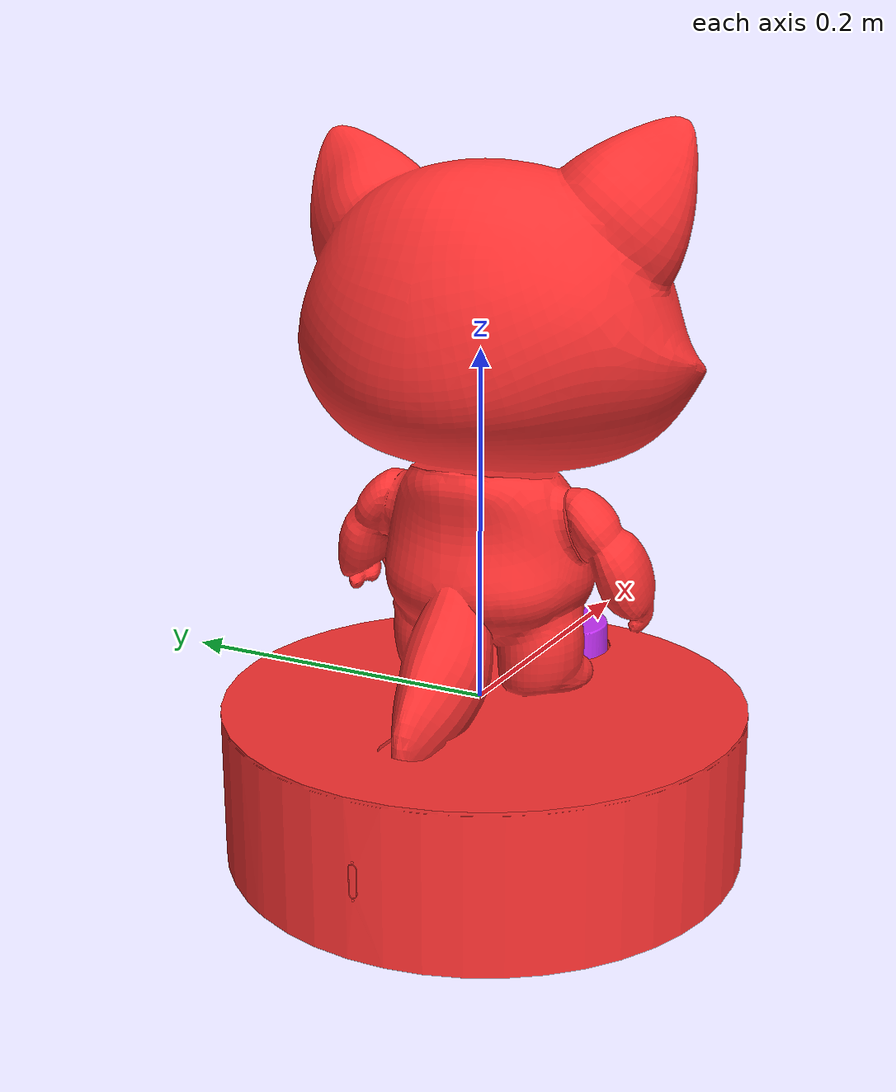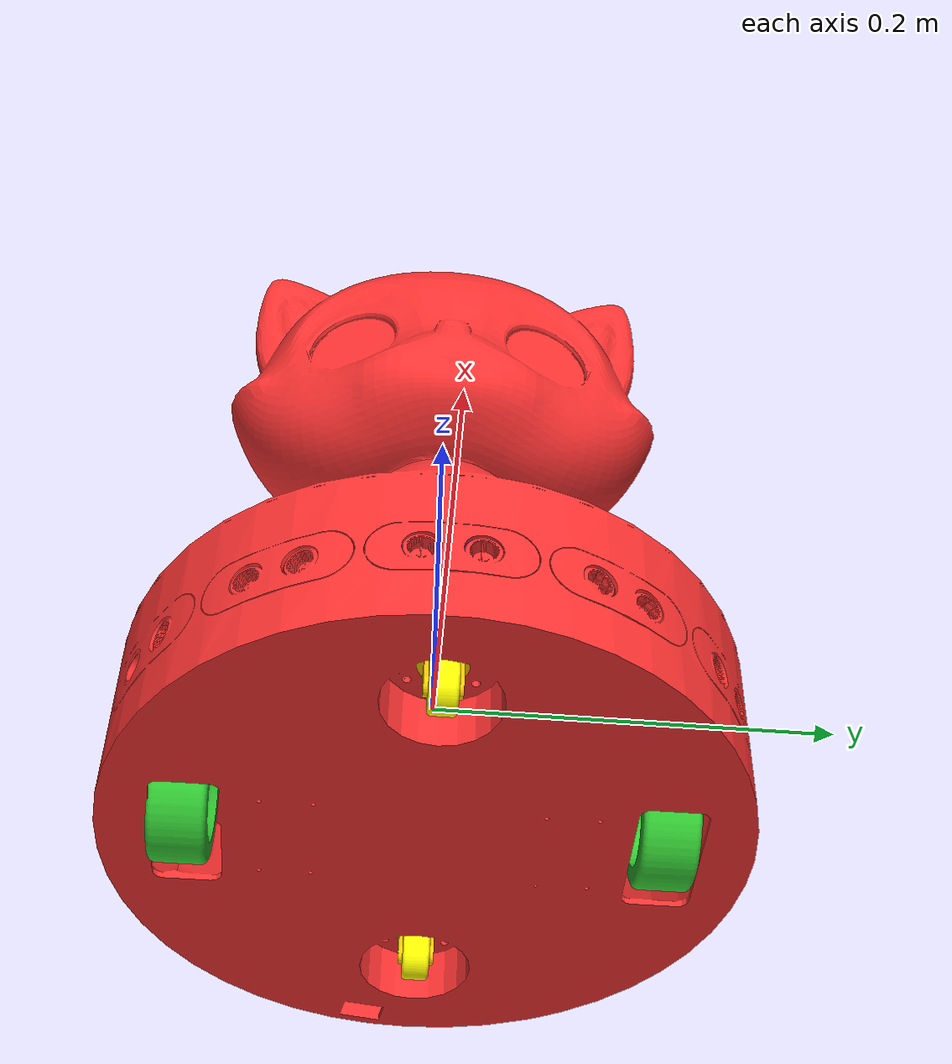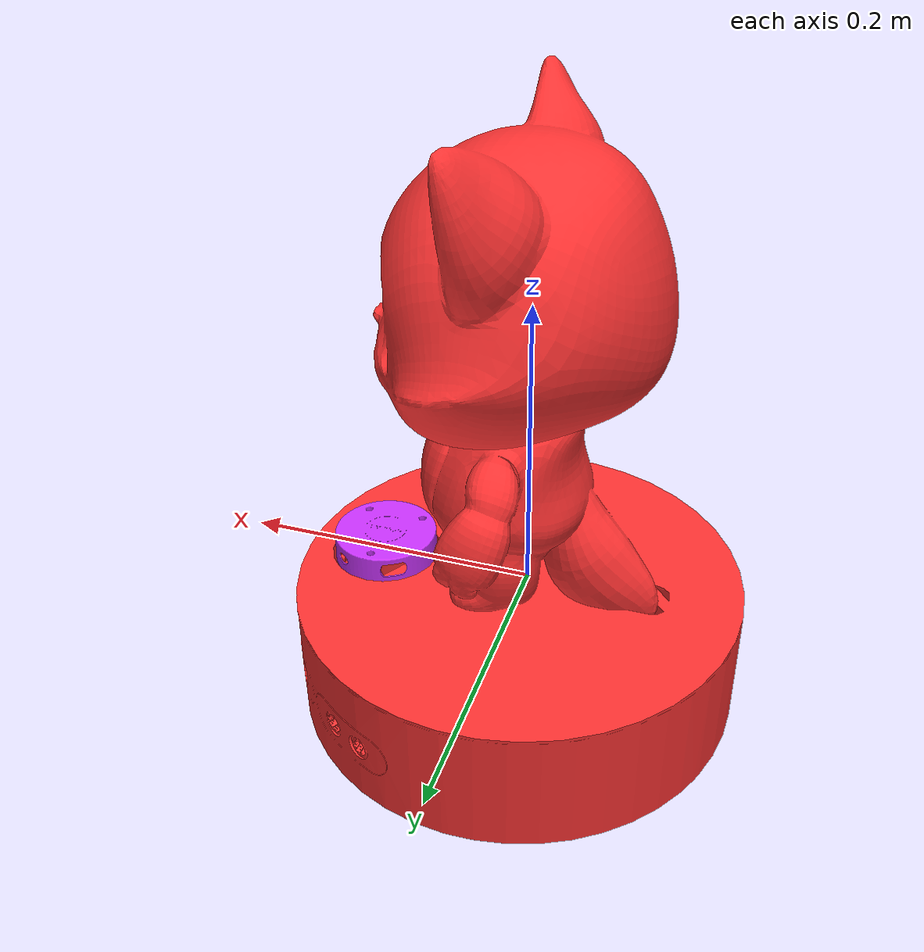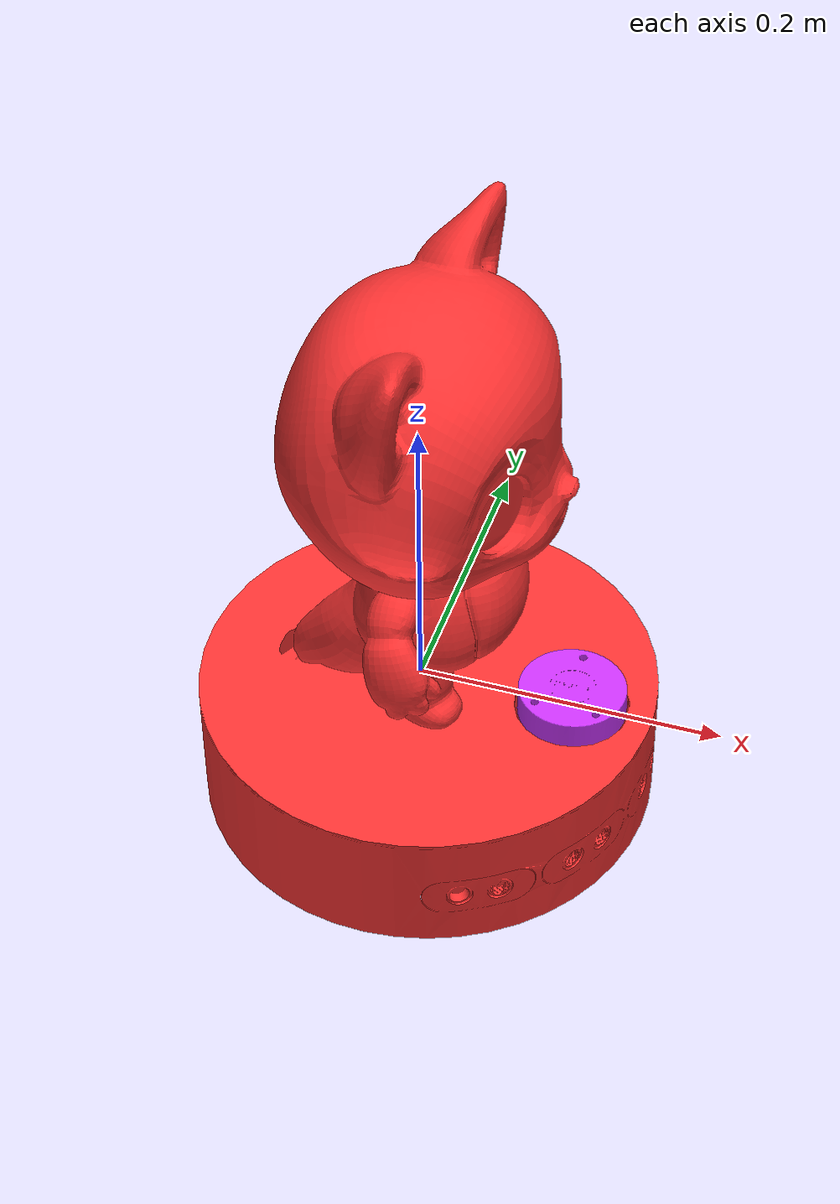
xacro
<?xml version="1.0" encoding="utf-8"?>
<robot
  name="redpanda_base">

  <!-- BASE LINK - Main robot body -->
  <link name="base_link"/>
  <link name="chassis_link">
    <inertial>
      <origin
        xyz="0.0035323 -0.00058335 0.12517"
        rpy="0 0 0" />
      <mass
        value="5" />
      <inertia
        ixx="0.021131"
        ixy="-2.2073E-06"
        ixz="0.00032516"
        iyy="0.017413"
        iyz="1.1682E-06"
        izz="0.023777" />
    </inertial>
    <visual>
      <origin
        xyz="0 0 0"
        rpy="0 0 0" />
      <geometry>
        <mesh
          filename="file://$(find redpanda_base)/meshes/base_link.STL" />
      </geometry>
      <material
        name="chassis_material">
        <color
          rgba="1 0.2 0.2 1" />
      </material>
    </visual>
    <collision>
      <origin
        xyz="0 0 0"
        rpy="0 0 0" />
      <geometry>
        <mesh
          filename="file://$(find redpanda_base)/meshes/base_link.STL" />
      </geometry>
    </collision>
  </link>
  <joint name="chassis_joint" type="fixed">
    <parent link="base_link"/>
    <child link="chassis_link"/>
    <origin xyz="0 0 0" rpy="0 0 0"/>
  </joint>

  <!-- LEFT WHEEL ASSEMBLY -->
  <link
    name="left_link">
    <inertial>
      <origin
        xyz="9.1168E-17 4.5103E-17 -0.0011655"
        rpy="0 0 0" />
      <mass
        value="0.1" />
      <inertia
        ixx="2.107E-05"
        ixy="-2.076E-21"
        ixz="7.6185E-22"
        iyy="2.107E-05"
        iyz="-2.5207E-21"
        izz="3.6474E-05" />
    </inertial>
    <visual>
      <origin
        xyz="0 0 0"
        rpy="0 0 0" />
      <geometry>
        <mesh
          filename="file://$(find redpanda_base)/meshes/left_link.STL" />
      </geometry>
      <material
        name="wheel_material">
        <color
          rgba="0.2 0.8 0.2 1" />
      </material>
    </visual>
    <collision>
      <origin
        xyz="0 0 0"
        rpy="0 0 0" />
      <geometry>
        <mesh
          filename="file://$(find redpanda_base)/meshes/left_link.STL" />
      </geometry>
    </collision>
  </link>
  <joint
    name="left_joint"
    type="continuous">
    <origin
      xyz="0.0053219 0.111 -0.064"
      rpy="-1.5708 0 0" />
    <parent
      link="chassis_link" />
    <child
      link="left_link" />
    <axis
      xyz="0 0 1" />
  </joint>

  <!-- RIGHT WHEEL ASSEMBLY -->
  <link
    name="right_link">
    <inertial>
      <origin
        xyz="-2.5058E-19 3.4694E-18 0.0011655"
        rpy="0 0 0" />
      <mass
        value="0.1" />
      <inertia
        ixx="2.107E-05"
        ixy="4.5801E-23"
        ixz="4.9702E-22"
        iyy="2.107E-05"
        iyz="2.0688E-22"
        izz="3.6474E-05" />
    </inertial>
    <visual>
      <origin
        xyz="0 0 0"
        rpy="0 0 0" />
      <geometry>
        <mesh
          filename="file://$(find redpanda_base)/meshes/right_link.STL" />
      </geometry>
      <material
        name="wheel_material">
        <color
          rgba="0.2 0.8 0.2 1" />
      </material>
    </visual>
    <collision>
      <origin
        xyz="0 0 0"
        rpy="0 0 0" />
      <geometry>
        <mesh
          filename="file://$(find redpanda_base)/meshes/right_link.STL" />
      </geometry>
    </collision>
  </link>
  <joint
    name="right_joint"
    type="continuous">
    <origin
      xyz="0.0053219 -0.111 -0.064"
      rpy="1.5708 0 0" />
    <parent
      link="chassis_link" />
    <child
      link="right_link" />
    <axis
      xyz="0 0 -1" />
  </joint>

  <!-- FRONT CASTER ASSEMBLY -->
  <link
    name="front_link">
    <inertial>
      <origin
        xyz="0.0018285 -2.3064E-17 -0.0067942"
        rpy="0 0 0" />
      <mass
        value="0.1" />
      <inertia
        ixx="1.3996E-07"
        ixy="1.0188E-08"
        ixz="2.9877E-08"
        iyy="1.4735E-07"
        iyz="-3.0127E-08"
        izz="1.1813E-07" />
    </inertial>
    <visual>
      <origin
        xyz="0 0 0"
        rpy="0 0 0" />
      <geometry>
        <mesh
          filename="file://$(find redpanda_base)/meshes/front_link.STL" />
      </geometry>
      <material
        name="caster_material">
        <color
          rgba="1 0.8 0 1" />
      </material>
    </visual>
    <collision>
      <origin
        xyz="0 0 0"
        rpy="0 0 0" />
      <geometry>
        <mesh
          filename="file://$(find redpanda_base)/meshes/front_link.STL" />
      </geometry>
    </collision>
  </link>
  <joint
    name="front_joint"
    type="continuous">
    <origin
      xyz="0.10232 0 -0.0635"
      rpy="0 0 0" />
    <parent
      link="chassis_link" />
    <child
      link="front_link" />
    <axis
      xyz="0 0 -1" />
  </joint>

  <!-- Front Caster Wheel -->
  <link
    name="casterfront_link">
    <inertial>
      <origin
        xyz="-1.3878E-17 4.3368E-19 -3.3126E-19"
        rpy="0 0 0" />
      <mass
        value="0.1" />
      <inertia
        ixx="3.2243E-07"
        ixy="-1.0157E-24"
        ixz="4.6905E-22"
        iyy="3.2243E-07"
        iyz="3.8842E-24"
        izz="4.7927E-07" />
    </inertial>
    <visual>
      <origin
        xyz="0 0 0"
        rpy="0 0 0" />
      <geometry>
        <mesh
          filename="file://$(find redpanda_base)/meshes/casterfront_link.STL" />
      </geometry>
      <material
        name="caster_wheel_material">
        <color
          rgba="1 1 0 1" />
      </material>
    </visual>
    <collision>
      <origin
        xyz="0 0 0"
        rpy="0 0 0" />
      <geometry>
        <mesh
          filename="file://$(find redpanda_base)/meshes/casterfront_link.STL" />
      </geometry>
    </collision>
  </link>
  <joint
    name="casterfront_joint"
    type="continuous">
    <origin
      xyz="0.0074613898024572 0 -0.0205"
      rpy="-1.5707963267949 0 0" />
    <parent
      link="front_link" />
    <child
      link="casterfront_link" />
    <axis
      xyz="0 0 1" />
  </joint>

  <!-- BACK CASTER ASSEMBLY -->
  <link
    name="back_link">
    <inertial>
      <origin
        xyz="0.0018285 -4.4617E-17 -0.0067942"
        rpy="0 0 0" />
      <mass
        value="0.1" />
      <inertia
        ixx="1.3996E-07"
        ixy="1.0188E-08"
        ixz="2.9877E-08"
        iyy="1.4735E-07"
        iyz="-3.0127E-08"
        izz="1.1813E-07" />
    </inertial>
    <visual>
      <origin
        xyz="0 0 0"
        rpy="0 0 0" />
      <geometry>
        <mesh
          filename="file://$(find redpanda_base)/meshes/back_link.STL" />
      </geometry>
      <material
        name="caster_material">
        <color
          rgba="1 0.8 0 1" />
      </material>
    </visual>
    <collision>
      <origin
        xyz="0 0 0"
        rpy="0 0 0" />
      <geometry>
        <mesh
          filename="file://$(find redpanda_base)/meshes/back_link.STL" />
      </geometry>
    </collision>
  </link>
  <joint
    name="back_joint"
    type="continuous">
    <origin
      xyz="-0.091678 0 -0.0635"
      rpy="0 0 0" />
    <parent
      link="chassis_link" />
    <child
      link="back_link" />
    <axis
      xyz="0 0 -1" />
  </joint>

  <!-- Back Caster Wheel -->
  <link
    name="casterback_link">
    <inertial>
      <origin
        xyz="1.3878E-17 0 -1.2284E-18"
        rpy="0 0 0" />
      <mass
        value="0.1" />
      <inertia
        ixx="3.2243E-07"
        ixy="3.3005E-24"
        ixz="5.4151E-22"
        iyy="3.2243E-07"
        iyz="-4.9098E-23"
        izz="4.7927E-07" />
    </inertial>
    <visual>
      <origin
        xyz="0 0 0"
        rpy="0 0 0" />
      <geometry>
        <mesh
          filename="file://$(find redpanda_base)/meshes/casterback_link.STL" />
      </geometry>
      <material
        name="caster_wheel_material">
        <color
          rgba="1 1 0 1" />
      </material>
    </visual>
    <collision>
      <origin
        xyz="0 0 0"
        rpy="0 0 0" />
      <geometry>
        <mesh
          filename="file://$(find redpanda_base)/meshes/casterback_link.STL" />
      </geometry>
    </collision>
  </link>
  <joint
    name="casterback_joint"
    type="continuous">
    <origin
      xyz="0.0074614 0 -0.0205"
      rpy="-1.5708 0 0" />
    <parent
      link="back_link" />
    <child
      link="casterback_link" />
    <axis
      xyz="0 0 1" />
  </joint>

  <!-- LIDAR SENSOR -->
  <link
    name="lidar_link">
    <inertial>
      <origin
        xyz="0 0 0"
        rpy="0 0 0" />
      <mass
        value="0.1" />
      <inertia
        ixx="0"
        ixy="0"
        ixz="0"
        iyy="0"
        iyz="0"
        izz="0" />
    </inertial>
    <visual>
      <origin
        xyz="0 0 0"
        rpy="0 0 0" />
      <geometry>
        <mesh
          filename="file://$(find redpanda_base)/meshes/lidar_link.STL" />
      </geometry>
      <material
        name="lidar_material">
        <color
          rgba="0.8 0.2 1 1" />
      </material>
    </visual>
    <collision>
      <origin
        xyz="0 0 0"
        rpy="0 0 0" />
      <geometry>
        <mesh
          filename="file://$(find redpanda_base)/meshes/lidar_link.STL" />
      </geometry>
    </collision>
  </link>
  <joint
    name="lidar_joint"
    type="fixed">
    <origin
      xyz="0.10232 0 0.015021"
      rpy="0 0 0" />
    <parent
      link="chassis_link" />
    <child
      link="lidar_link" />
    <axis
      xyz="0 0 0" />
  </joint>
</robot>
